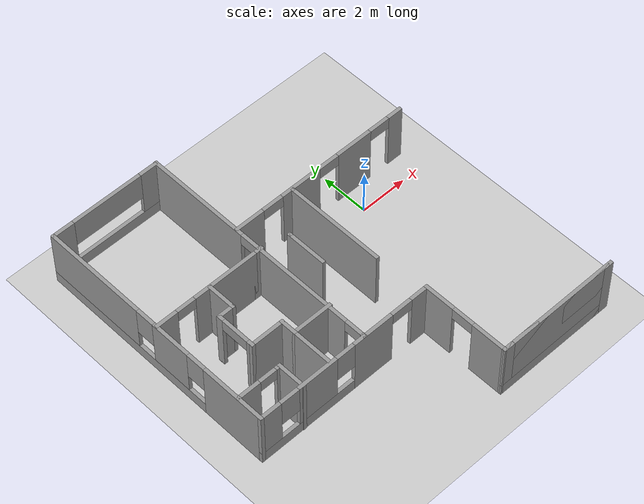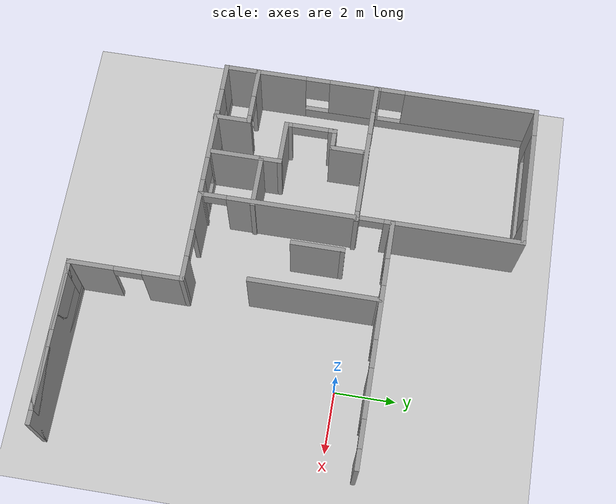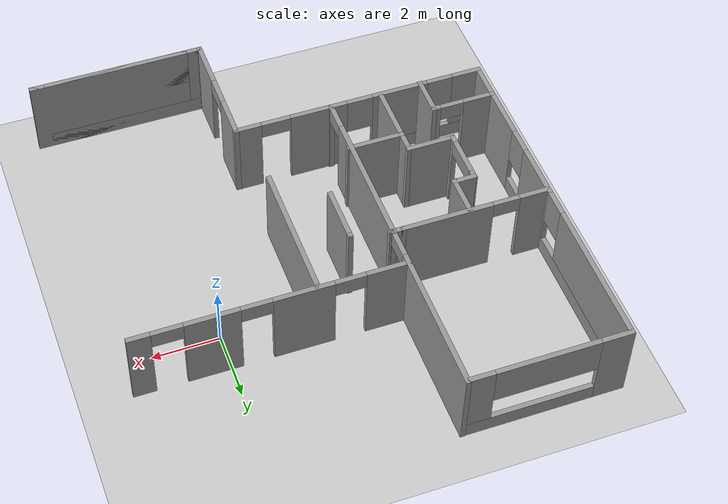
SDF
<sdf version="1.7">
 <world name="default">
  <model name="ground_plane">
   <static>1</static>
   <link name="link">
    <collision name="collision">
     <geometry><plane><normal>0 0 1</normal><size>100 100</size></plane></geometry>
     <surface>
      <contact><collide_bitmask>65535</collide_bitmask></contact>
      <friction><ode><mu>100</mu><mu2>50</mu2></ode></friction>
     </surface>
    </collision>
    <visual name="visual">
     <cast_shadows>0</cast_shadows>
     <geometry><plane><normal>0 0 1</normal><size>100 100</size></plane></geometry>
     <material>
      <script><uri>file://media/materials/scripts/gazebo.material</uri><name>Gazebo/Grey</name></script>
     </material>
    </visual>
   </link>
  </model>
  <model name="Floorplan5">
   <pose>0.817084 -1.82012 0 0 -0 0</pose>
   <link name="Wall_0">
    <collision name="Wall_0_Collision">
     <geometry><box><size>5.33606 0.15 2.5</size></box></geometry>
     <pose>0 0 1.25 0 -0 0</pose>
    </collision>
    <visual name="Wall_0_Visual">
     <pose>0 0 1.25 0 -0 0</pose>
     <geometry><box><size>5.33606 0.15 2.5</size></box></geometry>
     <material>
      <script><uri>file://media/materials/scripts/gazebo.material</uri><name>Gazebo/Grey</name></script>
      <ambient>1 1 1 1</ambient>
     </material>
     <meta><layer>0</layer></meta>
    </visual>
    <pose>-0.430466 -6.98064 0 0 -0 3.13979</pose>
   </link>
   <link name="Wall_1">
    <pose>-3.02349 -5.17596 0 0 -0 1.5708</pose>
    <visual name="Wall_1_Visual_0">
     <pose>-1.12311 0 1.25 0 -0 0</pose>
     <geometry><box><size>1.50379 0.15 2.5</size></box></geometry>
     <material>
      <script><uri>file://media/materials/scripts/gazebo.material</uri><name>Gazebo/Grey</name></script>
      <ambient>1 1 1 1</ambient>
     </material>
     <meta><layer>0</layer></meta>
    </visual>
    <collision name="Wall_1_Collision_0">
     <geometry><box><size>1.50379 0.15 2.5</size></box></geometry>
     <pose>-1.12311 0 1.25 0 -0 0</pose>
    </collision>
    <visual name="Wall_1_Visual_1">
     <pose>1.20189 0 1.25 0 -0 0</pose>
     <geometry><box><size>1.34621 0.15 2.5</size></box></geometry>
     <material>
      <script><uri>file://media/materials/scripts/gazebo.material</uri><name>Gazebo/Grey</name></script>
      <ambient>1 1 1 1</ambient>
     </material>
     <meta><layer>0</layer></meta>
    </visual>
    <collision name="Wall_1_Collision_1">
     <geometry><box><size>1.34621 0.15 2.5</size></box></geometry>
     <pose>1.20189 0 1.25 0 -0 0</pose>
    </collision>
    <visual name="Wall_1_Visual_2">
     <pose>0.078787 0 2.25 0 -0 0</pose>
     <geometry><box><size>0.9 0.15 0.5</size></box></geometry>
     <material>
      <script><uri>file://media/materials/scripts/gazebo.material</uri><name>Gazebo/Grey</name></script>
      <ambient>1 1 1 1</ambient>
     </material>
     <meta><layer>0</layer></meta>
    </visual>
    <collision name="Wall_1_Collision_2">
     <geometry><box><size>0.9 0.15 0.5</size></box></geometry>
     <pose>0.078787 0 2.25 0 -0 0</pose>
    </collision>
   </link>
   <link name="Wall_10">
    <pose>-8.32349 6.97404 0 0 -0 0</pose>
    <visual name="Wall_10_Visual_0">
     <pose>-1.90261 0 1.25 0 -0 0</pose>
     <geometry><box><size>0.944783 0.15 2.5</size></box></geometry>
     <material>
      <script><uri>file://media/materials/scripts/gazebo.material</uri><name>Gazebo/Grey</name></script>
      <ambient>1 1 1 1</ambient>
     </material>
     <meta><layer>0</layer></meta>
    </visual>
    <collision name="Wall_10_Collision_0">
     <geometry><box><size>0.944783 0.15 2.5</size></box></geometry>
     <pose>-1.90261 0 1.25 0 -0 0</pose>
    </collision>
    <visual name="Wall_10_Visual_1">
     <pose>0.472392 0 0.25 0 -0 0</pose>
     <geometry><box><size>3.80522 0.15 0.5</size></box></geometry>
     <material>
      <script><uri>file://media/materials/scripts/gazebo.material</uri><name>Gazebo/Grey</name></script>
      <ambient>1 1 1 1</ambient>
     </material>
     <meta><layer>0</layer></meta>
    </visual>
    <collision name="Wall_10_Collision_1">
     <geometry><box><size>3.80522 0.15 0.5</size></box></geometry>
     <pose>0.472392 0 0.25 0 -0 0</pose>
    </collision>
    <visual name="Wall_10_Visual_2">
     <pose>1.98492 0 1.5 0 -0 0</pose>
     <geometry><box><size>0.78016 0.15 2</size></box></geometry>
     <material>
      <script><uri>file://media/materials/scripts/gazebo.material</uri><name>Gazebo/Grey</name></script>
      <ambient>1 1 1 1</ambient>
     </material>
     <meta><layer>0</layer></meta>
    </visual>
    <collision name="Wall_10_Collision_2">
     <geometry><box><size>0.78016 0.15 2</size></box></geometry>
     <pose>1.98492 0 1.5 0 -0 0</pose>
    </collision>
    <visual name="Wall_10_Visual_3">
     <pose>0.082312 0 1.9 0 -0 0</pose>
     <geometry><box><size>3.02506 0.15 1.2</size></box></geometry>
     <material>
      <script><uri>file://media/materials/scripts/gazebo.material</uri><name>Gazebo/Grey</name></script>
      <ambient>1 1 1 1</ambient>
     </material>
     <meta><layer>0</layer></meta>
    </visual>
    <collision name="Wall_10_Collision_3">
     <geometry><box><size>3.02506 0.15 1.2</size></box></geometry>
     <pose>0.082312 0 1.9 0 -0 0</pose>
    </collision>
   </link>
   <link name="Wall_12">
    <pose>-2.00151 2.83994 0 0 -0 0</pose>
    <visual name="Wall_12_Visual_0">
     <pose>-3.36386 0 1.25 0 -0 0</pose>
     <geometry><box><size>1.27227 0.15 2.5</size></box></geometry>
     <material>
      <script><uri>file://media/materials/scripts/gazebo.material</uri><name>Gazebo/Grey</name></script>
      <ambient>1 1 1 1</ambient>
     </material>
     <meta><layer>0</layer></meta>
    </visual>
    <collision name="Wall_12_Collision_0">
     <geometry><box><size>1.27227 0.15 2.5</size></box></geometry>
     <pose>-3.36386 0 1.25 0 -0 0</pose>
    </collision>
    <visual name="Wall_12_Visual_1">
     <pose>-0.942694 0 1.25 0 -0 0</pose>
     <geometry><box><size>1.77007 0.15 2.5</size></box></geometry>
     <material>
      <script><uri>file://media/materials/scripts/gazebo.material</uri><name>Gazebo/Grey</name></script>
      <ambient>1 1 1 1</ambient>
     </material>
     <meta><layer>0</layer></meta>
    </visual>
    <collision name="Wall_12_Collision_1">
     <geometry><box><size>1.77007 0.15 2.5</size></box></geometry>
     <pose>-0.942694 0 1.25 0 -0 0</pose>
    </collision>
    <visual name="Wall_12_Visual_2">
     <pose>1.63635 0 1.25 0 -0 0</pose>
     <geometry><box><size>1.58802 0.15 2.5</size></box></geometry>
     <material>
      <script><uri>file://media/materials/scripts/gazebo.material</uri><name>Gazebo/Grey</name></script>
      <ambient>1 1 1 1</ambient>
     </material>
     <meta><layer>0</layer></meta>
    </visual>
    <collision name="Wall_12_Collision_2">
     <geometry><box><size>1.58802 0.15 2.5</size></box></geometry>
     <pose>1.63635 0 1.25 0 -0 0</pose>
    </collision>
    <visual name="Wall_12_Visual_3">
     <pose>3.66518 0 1.25 0 -0 0</pose>
     <geometry><box><size>0.669642 0.15 2.5</size></box></geometry>
     <material>
      <script><uri>file://media/materials/scripts/gazebo.material</uri><name>Gazebo/Grey</name></script>
      <ambient>1 1 1 1</ambient>
     </material>
     <meta><layer>0</layer></meta>
    </visual>
    <collision name="Wall_12_Collision_3">
     <geometry><box><size>0.669642 0.15 2.5</size></box></geometry>
     <pose>3.66518 0 1.25 0 -0 0</pose>
    </collision>
    <visual name="Wall_12_Visual_4">
     <pose>-2.27773 0 2.25 0 -0 0</pose>
     <geometry><box><size>0.9 0.15 0.5</size></box></geometry>
     <material>
      <script><uri>file://media/materials/scripts/gazebo.material</uri><name>Gazebo/Grey</name></script>
      <ambient>1 1 1 1</ambient>
     </material>
     <meta><layer>0</layer></meta>
    </visual>
    <collision name="Wall_12_Collision_4">
     <geometry><box><size>0.9 0.15 0.5</size></box></geometry>
     <pose>-2.27773 0 2.25 0 -0 0</pose>
    </collision>
    <visual name="Wall_12_Visual_5">
     <pose>0.39234 0 2.25 0 -0 0</pose>
     <geometry><box><size>0.9 0.15 0.5</size></box></geometry>
     <material>
      <script><uri>file://media/materials/scripts/gazebo.material</uri><name>Gazebo/Grey</name></script>
      <ambient>1 1 1 1</ambient>
     </material>
     <meta><layer>0</layer></meta>
    </visual>
    <collision name="Wall_12_Collision_5">
     <geometry><box><size>0.9 0.15 0.5</size></box></geometry>
     <pose>0.39234 0 2.25 0 -0 0</pose>
    </collision>
    <visual name="Wall_12_Visual_6">
     <pose>2.88036 0 2.25 0 -0 0</pose>
     <geometry><box><size>0.9 0.15 0.5</size></box></geometry>
     <material>
      <script><uri>file://media/materials/scripts/gazebo.material</uri><name>Gazebo/Grey</name></script>
      <ambient>1 1 1 1</ambient>
     </material>
     <meta><layer>0</layer></meta>
    </visual>
    <collision name="Wall_12_Collision_6">
     <geometry><box><size>0.9 0.15 0.5</size></box></geometry>
     <pose>2.88036 0 2.25 0 -0 0</pose>
    </collision>
   </link>
   <link name="Wall_43">
    <pose>-0.430466 -6.98064 0 0 -0 3.13979</pose>
    <visual name="Wall_43_Visual_0">
     <pose>-2.44294 0 1.25 0 -0 0</pose>
     <geometry><box><size>0.450176 0.15 2.5</size></box></geometry>
     <material>
      <script><uri>file://media/materials/scripts/gazebo.material</uri><name>Gazebo/Grey</name></script>
      <ambient>1 1 1 1</ambient>
     </material>
     <meta><layer>0</layer></meta>
    </visual>
    <collision name="Wall_43_Collision_0">
     <geometry><box><size>0.450176 0.15 2.5</size></box></geometry>
     <pose>-2.44294 0 1.25 0 -0 0</pose>
    </collision>
    <visual name="Wall_43_Visual_1">
     <pose>0.225088 0 0.25 0 -0 0</pose>
     <geometry><box><size>4.88588 0.15 0.5</size></box></geometry>
     <material>
      <script><uri>file://media/materials/scripts/gazebo.material</uri><name>Gazebo/Grey</name></script>
      <ambient>1 1 1 1</ambient>
     </material>
     <meta><layer>0</layer></meta>
    </visual>
    <collision name="Wall_43_Collision_1">
     <geometry><box><size>4.88588 0.15 0.5</size></box></geometry>
     <pose>0.225088 0 0.25 0 -0 0</pose>
    </collision>
    <visual name="Wall_43_Visual_2">
     <pose>0.053397 0 1.5 0 -0 0</pose>
     <geometry><box><size>0.555406 0.15 2</size></box></geometry>
     <material>
      <script><uri>file://media/materials/scripts/gazebo.material</uri><name>Gazebo/Grey</name></script>
      <ambient>1 1 1 1</ambient>
     </material>
     <meta><layer>0</layer></meta>
    </visual>
    <collision name="Wall_43_Collision_2">
     <geometry><box><size>0.555406 0.15 2</size></box></geometry>
     <pose>0.053397 0 1.5 0 -0 0</pose>
    </collision>
    <visual name="Wall_43_Visual_3">
     <pose>2.42547 0 1.5 0 -0 0</pose>
     <geometry><box><size>0.485123 0.15 2</size></box></geometry>
     <material>
      <script><uri>file://media/materials/scripts/gazebo.material</uri><name>Gazebo/Grey</name></script>
      <ambient>1 1 1 1</ambient>
     </material>
     <meta><layer>0</layer></meta>
    </visual>
    <collision name="Wall_43_Collision_3">
     <geometry><box><size>0.485123 0.15 2</size></box></geometry>
     <pose>2.42547 0 1.5 0 -0 0</pose>
    </collision>
    <visual name="Wall_43_Visual_4">
     <pose>-1.22108 0 1.9 0 -0 0</pose>
     <geometry><box><size>1.99355 0.15 1.2</size></box></geometry>
     <material>
      <script><uri>file://media/materials/scripts/gazebo.material</uri><name>Gazebo/Grey</name></script>
      <ambient>1 1 1 1</ambient>
     </material>
     <meta><layer>0</layer></meta>
    </visual>
    <collision name="Wall_43_Collision_4">
     <geometry><box><size>1.99355 0.15 1.2</size></box></geometry>
     <pose>-1.22108 0 1.9 0 -0 0</pose>
    </collision>
    <visual name="Wall_43_Visual_5">
     <pose>1.257 0 1.9 0 -0 0</pose>
     <geometry><box><size>1.85181 0.15 1.2</size></box></geometry>
     <material>
      <script><uri>file://media/materials/scripts/gazebo.material</uri><name>Gazebo/Grey</name></script>
      <ambient>1 1 1 1</ambient>
     </material>
     <meta><layer>0</layer></meta>
    </visual>
    <collision name="Wall_43_Collision_5">
     <geometry><box><size>1.85181 0.15 1.2</size></box></geometry>
     <pose>1.257 0 1.9 0 -0 0</pose>
    </collision>
   </link>
   <link name="Wall_44">
    <collision name="Wall_44_Collision">
     <geometry><box><size>0.16 0.15 2.5</size></box></geometry>
     <pose>0 0 1.25 0 -0 0</pose>
    </collision>
    <visual name="Wall_44_Visual">
     <pose>0 0 1.25 0 -0 0</pose>
     <geometry><box><size>0.16 0.15 2.5</size></box></geometry>
     <material>
      <script><uri>file://media/materials/scripts/gazebo.material</uri><name>Gazebo/Grey</name></script>
      <ambient>1 1 1 1</ambient>
     </material>
     <meta><layer>0</layer></meta>
    </visual>
    <pose>-3.01849 -6.97596 0 0 -0 0</pose>
   </link>
   <link name="Wall_49">
    <collision name="Wall_49_Collision">
     <geometry><box><size>4.25 0.15 2.5</size></box></geometry>
     <pose>0 0 1.25 0 -0 0</pose>
    </collision>
    <visual name="Wall_49_Visual">
     <pose>0 0 1.25 0 -0 0</pose>
     <geometry><box><size>4.25 0.15 2.5</size></box></geometry>
     <material>
      <script><uri>file://media/materials/scripts/gazebo.material</uri><name>Gazebo/Grey</name></script>
      <ambient>1 1 1 1</ambient>
     </material>
     <meta><layer>0</layer></meta>
    </visual>
    <pose>-3.34876 0.736864 0 0 -0 1.5708</pose>
   </link>
   <link name="Wall_5">
    <pose>-5.95393 1.81045 0 0 -0 -1.5708</pose>
    <visual name="Wall_5_Visual_0">
     <pose>-2.99965 0 1.25 0 -0 0</pose>
     <geometry><box><size>4.50069 0.15 2.5</size></box></geometry>
     <material>
      <script><uri>file://media/materials/scripts/gazebo.material</uri><name>Gazebo/Grey</name></script>
      <ambient>1 1 1 1</ambient>
     </material>
     <meta><layer>0</layer></meta>
    </visual>
    <collision name="Wall_5_Collision_0">
     <geometry><box><size>4.50069 0.15 2.5</size></box></geometry>
     <pose>-2.99965 0 1.25 0 -0 0</pose>
    </collision>
    <visual name="Wall_5_Visual_1">
     <pose>2.1786 0 1.25 0 -0 0</pose>
     <geometry><box><size>4.29854 0.15 2.5</size></box></geometry>
     <material>
      <script><uri>file://media/materials/scripts/gazebo.material</uri><name>Gazebo/Grey</name></script>
      <ambient>1 1 1 1</ambient>
     </material>
     <meta><layer>0</layer></meta>
    </visual>
    <collision name="Wall_5_Collision_1">
     <geometry><box><size>4.29854 0.15 2.5</size></box></geometry>
     <pose>2.1786 0 1.25 0 -0 0</pose>
    </collision>
    <visual name="Wall_5_Visual_2">
     <pose>5.15802 0 1.25 0 -0 0</pose>
     <geometry><box><size>0.183955 0.15 2.5</size></box></geometry>
     <material>
      <script><uri>file://media/materials/scripts/gazebo.material</uri><name>Gazebo/Grey</name></script>
      <ambient>1 1 1 1</ambient>
     </material>
     <meta><layer>0</layer></meta>
    </visual>
    <collision name="Wall_5_Collision_2">
     <geometry><box><size>0.183955 0.15 2.5</size></box></geometry>
     <pose>5.15802 0 1.25 0 -0 0</pose>
    </collision>
    <visual name="Wall_5_Visual_3">
     <pose>-0.359991 0 2.25 0 -0 0</pose>
     <geometry><box><size>0.778633 0.15 0.5</size></box></geometry>
     <material>
      <script><uri>file://media/materials/scripts/gazebo.material</uri><name>Gazebo/Grey</name></script>
      <ambient>1 1 1 1</ambient>
     </material>
     <meta><layer>0</layer></meta>
    </visual>
    <collision name="Wall_5_Collision_3">
     <geometry><box><size>0.778633 0.15 0.5</size></box></geometry>
     <pose>-0.359991 0 2.25 0 -0 0</pose>
    </collision>
    <visual name="Wall_5_Visual_4">
     <pose>4.69696 0 2.25 0 -0 0</pose>
     <geometry><box><size>0.738178 0.15 0.5</size></box></geometry>
     <material>
      <script><uri>file://media/materials/scripts/gazebo.material</uri><name>Gazebo/Grey</name></script>
      <ambient>1 1 1 1</ambient>
     </material>
     <meta><layer>0</layer></meta>
    </visual>
    <collision name="Wall_5_Collision_4">
     <geometry><box><size>0.738178 0.15 0.5</size></box></geometry>
     <pose>4.69696 0 2.25 0 -0 0</pose>
    </collision>
   </link>
   <link name="Wall_50">
    <collision name="Wall_50_Collision">
     <geometry><box><size>0.15 0.15 2.5</size></box></geometry>
     <pose>0 0 1.25 0 -0 0</pose>
    </collision>
    <visual name="Wall_50_Visual">
     <pose>0 0 1.25 0 -0 0</pose>
     <geometry><box><size>0.15 0.15 2.5</size></box></geometry>
     <material>
      <script><uri>file://media/materials/scripts/gazebo.material</uri><name>Gazebo/Grey</name></script>
      <ambient>1 1 1 1</ambient>
     </material>
     <meta><layer>0</layer></meta>
    </visual>
    <pose>-3.34876 2.78686 0 0 -0 0</pose>
   </link>
   <link name="Wall_52">
    <pose>-8.41531 1.68058 0 0 -0 0</pose>
    <visual name="Wall_52_Visual_0">
     <pose>-1.78515 0 1.25 0 -0 0</pose>
     <geometry><box><size>0.929692 0.15 2.5</size></box></geometry>
     <material>
      <script><uri>file://media/materials/scripts/gazebo.material</uri><name>Gazebo/Grey</name></script>
      <ambient>1 1 1 1</ambient>
     </material>
     <meta><layer>0</layer></meta>
    </visual>
    <collision name="Wall_52_Collision_0">
     <geometry><box><size>0.929692 0.15 2.5</size></box></geometry>
     <pose>-1.78515 0 1.25 0 -0 0</pose>
    </collision>
    <visual name="Wall_52_Visual_1">
     <pose>0.864277 0 1.25 0 -0 0</pose>
     <geometry><box><size>2.77145 0.15 2.5</size></box></geometry>
     <material>
      <script><uri>file://media/materials/scripts/gazebo.material</uri><name>Gazebo/Grey</name></script>
      <ambient>1 1 1 1</ambient>
     </material>
     <meta><layer>0</layer></meta>
    </visual>
    <collision name="Wall_52_Collision_1">
     <geometry><box><size>2.77145 0.15 2.5</size></box></geometry>
     <pose>0.864277 0 1.25 0 -0 0</pose>
    </collision>
    <visual name="Wall_52_Visual_2">
     <pose>-0.920877 0 2.25 0 -0 0</pose>
     <geometry><box><size>0.798861 0.15 0.5</size></box></geometry>
     <material>
      <script><uri>file://media/materials/scripts/gazebo.material</uri><name>Gazebo/Grey</name></script>
      <ambient>1 1 1 1</ambient>
     </material>
     <meta><layer>0</layer></meta>
    </visual>
    <collision name="Wall_52_Collision_2">
     <geometry><box><size>0.798861 0.15 0.5</size></box></geometry>
     <pose>-0.920877 0 2.25 0 -0 0</pose>
    </collision>
   </link>
   <link name="Wall_53">
    <collision name="Wall_53_Collision">
     <geometry><box><size>0.5 0.15 2.5</size></box></geometry>
     <pose>0 0 1.25 0 -0 0</pose>
    </collision>
    <visual name="Wall_53_Visual">
     <pose>0 0 1.25 0 -0 0</pose>
     <geometry><box><size>0.5 0.15 2.5</size></box></geometry>
     <material>
      <script><uri>file://media/materials/scripts/gazebo.material</uri><name>Gazebo/Grey</name></script>
      <ambient>1 1 1 1</ambient>
     </material>
     <meta><layer>0</layer></meta>
    </visual>
    <pose>-6.06531 1.68058 0 0 -0 0</pose>
   </link>
   <link name="Wall_54">
    <collision name="Wall_54_Collision">
     <geometry><box><size>0.15 0.15 2.5</size></box></geometry>
     <pose>0 0 1.25 0 -0 0</pose>
    </collision>
    <visual name="Wall_54_Visual">
     <pose>0 0 1.25 0 -0 0</pose>
     <geometry><box><size>0.15 0.15 2.5</size></box></geometry>
     <material>
      <script><uri>file://media/materials/scripts/gazebo.material</uri><name>Gazebo/Grey</name></script>
      <ambient>1 1 1 1</ambient>
     </material>
     <meta><layer>0</layer></meta>
    </visual>
    <pose>-5.89031 1.68058 0 0 -0 0</pose>
   </link>
   <link name="Wall_56">
    <collision name="Wall_56_Collision">
     <geometry><box><size>1.75 0.15 2.5</size></box></geometry>
     <pose>0 0 1.25 0 -0 0</pose>
    </collision>
    <visual name="Wall_56_Visual">
     <pose>0 0 1.25 0 -0 0</pose>
     <geometry><box><size>1.75 0.15 2.5</size></box></geometry>
     <material>
      <script><uri>file://media/materials/scripts/gazebo.material</uri><name>Gazebo/Grey</name></script>
      <ambient>1 1 1 1</ambient>
     </material>
     <meta><layer>0</layer></meta>
    </visual>
    <pose>-6.69746 -1.65701 0 0 -0 3.14159</pose>
   </link>
   <link name="Wall_57">
    <collision name="Wall_57_Collision">
     <geometry><box><size>1.75 0.15 2.5</size></box></geometry>
     <pose>0 0 1.25 0 -0 0</pose>
    </collision>
    <visual name="Wall_57_Visual">
     <pose>0 0 1.25 0 -0 0</pose>
     <geometry><box><size>1.75 0.15 2.5</size></box></geometry>
     <material>
      <script><uri>file://media/materials/scripts/gazebo.material</uri><name>Gazebo/Grey</name></script>
      <ambient>1 1 1 1</ambient>
     </material>
     <meta><layer>0</layer></meta>
    </visual>
    <pose>-7.49746 -2.45701 0 0 -0 -1.5708</pose>
   </link>
   <link name="Wall_59">
    <collision name="Wall_59_Collision">
     <geometry><box><size>0.75 0.15 2.5</size></box></geometry>
     <pose>0 0 1.25 0 -0 0</pose>
    </collision>
    <visual name="Wall_59_Visual">
     <pose>0 0 1.25 0 -0 0</pose>
     <geometry><box><size>0.75 0.15 2.5</size></box></geometry>
     <material>
      <script><uri>file://media/materials/scripts/gazebo.material</uri><name>Gazebo/Grey</name></script>
      <ambient>1 1 1 1</ambient>
     </material>
     <meta><layer>0</layer></meta>
    </visual>
    <pose>-7.49746 -1.35701 0 0 -0 1.5708</pose>
   </link>
   <link name="Wall_6">
    <collision name="Wall_6_Collision">
     <geometry><box><size>0.15 0.15 2.5</size></box></geometry>
     <pose>0 0 1.25 0 -0 0</pose>
    </collision>
    <visual name="Wall_6_Visual">
     <pose>0 0 1.25 0 -0 0</pose>
     <geometry><box><size>0.15 0.15 2.5</size></box></geometry>
     <material>
      <script><uri>file://media/materials/scripts/gazebo.material</uri><name>Gazebo/Grey</name></script>
      <ambient>1 1 1 1</ambient>
     </material>
     <meta><layer>0</layer></meta>
    </visual>
    <pose>-5.95393 -3.37335 0 0 -0 0</pose>
   </link>
   <link name="Wall_60">
    <collision name="Wall_60_Collision">
     <geometry><box><size>1.5 0.15 2.5</size></box></geometry>
     <pose>0 0 1.25 0 -0 0</pose>
    </collision>
    <visual name="Wall_60_Visual">
     <pose>0 0 1.25 0 -0 0</pose>
     <geometry><box><size>1.5 0.15 2.5</size></box></geometry>
     <material>
      <script><uri>file://media/materials/scripts/gazebo.material</uri><name>Gazebo/Grey</name></script>
      <ambient>1 1 1 1</ambient>
     </material>
     <meta><layer>0</layer></meta>
    </visual>
    <pose>-8.17246 -1.05701 0 0 -0 3.14159</pose>
   </link>
   <link name="Wall_61">
    <pose>-8.84746 -0.257008 0 0 -0 1.5708</pose>
    <visual name="Wall_61_Visual_0">
     <pose>-0.735439 0 1.25 0 -0 0</pose>
     <geometry><box><size>0.279123 0.15 2.5</size></box></geometry>
     <material>
      <script><uri>file://media/materials/scripts/gazebo.material</uri><name>Gazebo/Grey</name></script>
      <ambient>1 1 1 1</ambient>
     </material>
     <meta><layer>0</layer></meta>
    </visual>
    <collision name="Wall_61_Collision_0">
     <geometry><box><size>0.279123 0.15 2.5</size></box></geometry>
     <pose>-0.735439 0 1.25 0 -0 0</pose>
    </collision>
    <visual name="Wall_61_Visual_1">
     <pose>0.731156 0 1.25 0 -0 0</pose>
     <geometry><box><size>0.287688 0.15 2.5</size></box></geometry>
     <material>
      <script><uri>file://media/materials/scripts/gazebo.material</uri><name>Gazebo/Grey</name></script>
      <ambient>1 1 1 1</ambient>
     </material>
     <meta><layer>0</layer></meta>
    </visual>
    <collision name="Wall_61_Collision_1">
     <geometry><box><size>0.287688 0.15 2.5</size></box></geometry>
     <pose>0.731156 0 1.25 0 -0 0</pose>
    </collision>
    <visual name="Wall_61_Visual_2">
     <pose>-0.004283 0 2.25 0 -0 0</pose>
     <geometry><box><size>1.18319 0.15 0.5</size></box></geometry>
     <material>
      <script><uri>file://media/materials/scripts/gazebo.material</uri><name>Gazebo/Grey</name></script>
      <ambient>1 1 1 1</ambient>
     </material>
     <meta><layer>0</layer></meta>
    </visual>
    <collision name="Wall_61_Collision_2">
     <geometry><box><size>1.18319 0.15 0.5</size></box></geometry>
     <pose>-0.004283 0 2.25 0 -0 0</pose>
    </collision>
   </link>
   <link name="Wall_62">
    <collision name="Wall_62_Collision">
     <geometry><box><size>0.75 0.15 2.5</size></box></geometry>
     <pose>0 0 1.25 0 -0 0</pose>
    </collision>
    <visual name="Wall_62_Visual">
     <pose>0 0 1.25 0 -0 0</pose>
     <geometry><box><size>0.75 0.15 2.5</size></box></geometry>
     <material>
      <script><uri>file://media/materials/scripts/gazebo.material</uri><name>Gazebo/Grey</name></script>
      <ambient>1 1 1 1</ambient>
     </material>
     <meta><layer>0</layer></meta>
    </visual>
    <pose>-8.54746 0.542992 0 0 -0 0</pose>
   </link>
   <link name="Wall_63">
    <collision name="Wall_63_Collision">
     <geometry><box><size>1.25 0.15 2.5</size></box></geometry>
     <pose>0 0 1.25 0 -0 0</pose>
    </collision>
    <visual name="Wall_63_Visual">
     <pose>0 0 1.25 0 -0 0</pose>
     <geometry><box><size>1.25 0.15 2.5</size></box></geometry>
     <material>
      <script><uri>file://media/materials/scripts/gazebo.material</uri><name>Gazebo/Grey</name></script>
      <ambient>1 1 1 1</ambient>
     </material>
     <meta><layer>0</layer></meta>
    </visual>
    <pose>-8.24746 1.09299 0 0 -0 1.5708</pose>
   </link>
   <link name="Wall_64">
    <collision name="Wall_64_Collision">
     <geometry><box><size>0.15 0.15 2.5</size></box></geometry>
     <pose>0 0 1.25 0 -0 0</pose>
    </collision>
    <visual name="Wall_64_Visual">
     <pose>0 0 1.25 0 -0 0</pose>
     <geometry><box><size>0.15 0.15 2.5</size></box></geometry>
     <material>
      <script><uri>file://media/materials/scripts/gazebo.material</uri><name>Gazebo/Grey</name></script>
      <ambient>1 1 1 1</ambient>
     </material>
     <meta><layer>0</layer></meta>
    </visual>
    <pose>-8.24746 1.64299 0 0 -0 0</pose>
   </link>
   <link name="Wall_66">
    <collision name="Wall_66_Collision">
     <geometry><box><size>1.25 0.15 2.5</size></box></geometry>
     <pose>0 0 1.25 0 -0 0</pose>
    </collision>
    <visual name="Wall_66_Visual">
     <pose>0 0 1.25 0 -0 0</pose>
     <geometry><box><size>1.25 0.15 2.5</size></box></geometry>
     <material>
      <script><uri>file://media/materials/scripts/gazebo.material</uri><name>Gazebo/Grey</name></script>
      <ambient>1 1 1 1</ambient>
     </material>
     <meta><layer>0</layer></meta>
    </visual>
    <pose>-8.7698 -2.8466 0 0 -0 1.5708</pose>
   </link>
   <link name="Wall_67">
    <pose>-9.69481 -2.2966 0 0 -0 3.14159</pose>
    <visual name="Wall_67_Visual_0">
     <pose>-0.863855 0 1.25 0 -0 0</pose>
     <geometry><box><size>0.27229 0.15 2.5</size></box></geometry>
     <material>
      <script><uri>file://media/materials/scripts/gazebo.material</uri><name>Gazebo/Grey</name></script>
      <ambient>1 1 1 1</ambient>
     </material>
     <meta><layer>0</layer></meta>
    </visual>
    <collision name="Wall_67_Collision_0">
     <geometry><box><size>0.27229 0.15 2.5</size></box></geometry>
     <pose>-0.863855 0 1.25 0 -0 0</pose>
    </collision>
    <visual name="Wall_67_Visual_1">
     <pose>0.49512 0 1.25 0 -0 0</pose>
     <geometry><box><size>1.00976 0.15 2.5</size></box></geometry>
     <material>
      <script><uri>file://media/materials/scripts/gazebo.material</uri><name>Gazebo/Grey</name></script>
      <ambient>1 1 1 1</ambient>
     </material>
     <meta><layer>0</layer></meta>
    </visual>
    <collision name="Wall_67_Collision_1">
     <geometry><box><size>1.00976 0.15 2.5</size></box></geometry>
     <pose>0.49512 0 1.25 0 -0 0</pose>
    </collision>
    <visual name="Wall_67_Visual_2">
     <pose>-0.368735 0 2.25 0 -0 0</pose>
     <geometry><box><size>0.71795 0.15 0.5</size></box></geometry>
     <material>
      <script><uri>file://media/materials/scripts/gazebo.material</uri><name>Gazebo/Grey</name></script>
      <ambient>1 1 1 1</ambient>
     </material>
     <meta><layer>0</layer></meta>
    </visual>
    <collision name="Wall_67_Collision_2">
     <geometry><box><size>0.71795 0.15 0.5</size></box></geometry>
     <pose>-0.368735 0 2.25 0 -0 0</pose>
    </collision>
   </link>
   <link name="Wall_68">
    <collision name="Wall_68_Collision">
     <geometry><box><size>0.16 0.15 2.5</size></box></geometry>
     <pose>0 0 1.25 0 -0 0</pose>
    </collision>
    <visual name="Wall_68_Visual">
     <pose>0 0 1.25 0 -0 0</pose>
     <geometry><box><size>0.16 0.15 2.5</size></box></geometry>
     <material>
      <script><uri>file://media/materials/scripts/gazebo.material</uri><name>Gazebo/Grey</name></script>
      <ambient>1 1 1 1</ambient>
     </material>
     <meta><layer>0</layer></meta>
    </visual>
    <pose>-10.6148 -2.2966 0 0 -0 0</pose>
   </link>
   <link name="Wall_70">
    <collision name="Wall_70_Collision">
     <geometry><box><size>1.75 0.15 2.5</size></box></geometry>
     <pose>0 0 1.25 0 -0 0</pose>
    </collision>
    <visual name="Wall_70_Visual">
     <pose>0 0 1.25 0 -0 0</pose>
     <geometry><box><size>1.75 0.15 2.5</size></box></geometry>
     <material>
      <script><uri>file://media/materials/scripts/gazebo.material</uri><name>Gazebo/Grey</name></script>
      <ambient>1 1 1 1</ambient>
     </material>
     <meta><layer>0</layer></meta>
    </visual>
    <pose>-4.78493 0.61962 0 0 -0 1.5708</pose>
   </link>
   <link name="Wall_71">
    <collision name="Wall_71_Collision">
     <geometry><box><size>0.15 0.15 2.5</size></box></geometry>
     <pose>0 0 1.25 0 -0 0</pose>
    </collision>
    <visual name="Wall_71_Visual">
     <pose>0 0 1.25 0 -0 0</pose>
     <geometry><box><size>0.15 0.15 2.5</size></box></geometry>
     <material>
      <script><uri>file://media/materials/scripts/gazebo.material</uri><name>Gazebo/Grey</name></script>
      <ambient>1 1 1 1</ambient>
     </material>
     <meta><layer>0</layer></meta>
    </visual>
    <pose>-4.78493 1.41962 0 0 -0 0</pose>
   </link>
   <link name="Wall_8">
    <pose>-6.82349 -3.37596 0 0 -0 3.14159</pose>
    <visual name="Wall_8_Visual_0">
     <pose>-3.45485 0 1.25 0 -0 0</pose>
     <geometry><box><size>0.84029 0.15 2.5</size></box></geometry>
     <material>
      <script><uri>file://media/materials/scripts/gazebo.material</uri><name>Gazebo/Grey</name></script>
      <ambient>1 1 1 1</ambient>
     </material>
     <meta><layer>0</layer></meta>
    </visual>
    <collision name="Wall_8_Collision_0">
     <geometry><box><size>0.84029 0.15 2.5</size></box></geometry>
     <pose>-3.45485 0 1.25 0 -0 0</pose>
    </collision>
    <visual name="Wall_8_Visual_1">
     <pose>-1.25637 0 1.25 0 -0 0</pose>
     <geometry><box><size>1.75668 0.15 2.5</size></box></geometry>
     <material>
      <script><uri>file://media/materials/scripts/gazebo.material</uri><name>Gazebo/Grey</name></script>
      <ambient>1 1 1 1</ambient>
     </material>
     <meta><layer>0</layer></meta>
    </visual>
    <collision name="Wall_8_Collision_1">
     <geometry><box><size>1.75668 0.15 2.5</size></box></geometry>
     <pose>-1.25637 0 1.25 0 -0 0</pose>
    </collision>
    <visual name="Wall_8_Visual_2">
     <pose>1.74849 0 0.25 0 -0 0</pose>
     <geometry><box><size>4.25303 0.15 0.5</size></box></geometry>
     <material>
      <script><uri>file://media/materials/scripts/gazebo.material</uri><name>Gazebo/Grey</name></script>
      <ambient>1 1 1 1</ambient>
     </material>
     <meta><layer>0</layer></meta>
    </visual>
    <collision name="Wall_8_Collision_2">
     <geometry><box><size>4.25303 0.15 0.5</size></box></geometry>
     <pose>1.74849 0 0.25 0 -0 0</pose>
    </collision>
    <visual name="Wall_8_Visual_3">
     <pose>1.28621 0 1.5 0 -0 0</pose>
     <geometry><box><size>1.72847 0.15 2</size></box></geometry>
     <material>
      <script><uri>file://media/materials/scripts/gazebo.material</uri><name>Gazebo/Grey</name></script>
      <ambient>1 1 1 1</ambient>
     </material>
     <meta><layer>0</layer></meta>
    </visual>
    <collision name="Wall_8_Collision_3">
     <geometry><box><size>1.72847 0.15 2</size></box></geometry>
     <pose>1.28621 0 1.5 0 -0 0</pose>
    </collision>
    <visual name="Wall_8_Visual_4">
     <pose>3.41272 0 1.5 0 -0 0</pose>
     <geometry><box><size>0.924556 0.15 2</size></box></geometry>
     <material>
      <script><uri>file://media/materials/scripts/gazebo.material</uri><name>Gazebo/Grey</name></script>
      <ambient>1 1 1 1</ambient>
     </material>
     <meta><layer>0</layer></meta>
    </visual>
    <collision name="Wall_8_Collision_4">
     <geometry><box><size>0.924556 0.15 2</size></box></geometry>
     <pose>3.41272 0 1.5 0 -0 0</pose>
    </collision>
    <visual name="Wall_8_Visual_5">
     <pose>0.021971 0 1.9 0 -0 0</pose>
     <geometry><box><size>0.8 0.15 1.2</size></box></geometry>
     <material>
      <script><uri>file://media/materials/scripts/gazebo.material</uri><name>Gazebo/Grey</name></script>
      <ambient>1 1 1 1</ambient>
     </material>
     <meta><layer>0</layer></meta>
    </visual>
    <collision name="Wall_8_Collision_5">
     <geometry><box><size>0.8 0.15 1.2</size></box></geometry>
     <pose>0.021971 0 1.9 0 -0 0</pose>
    </collision>
    <visual name="Wall_8_Visual_6">
     <pose>2.55044 0 1.9 0 -0 0</pose>
     <geometry><box><size>0.8 0.15 1.2</size></box></geometry>
     <material>
      <script><uri>file://media/materials/scripts/gazebo.material</uri><name>Gazebo/Grey</name></script>
      <ambient>1 1 1 1</ambient>
     </material>
     <meta><layer>0</layer></meta>
    </visual>
    <collision name="Wall_8_Collision_6">
     <geometry><box><size>0.8 0.15 1.2</size></box></geometry>
     <pose>2.55044 0 1.9 0 -0 0</pose>
    </collision>
    <visual name="Wall_8_Visual_7">
     <pose>-2.58471 0 2.25 0 -0 0</pose>
     <geometry><box><size>0.9 0.15 0.5</size></box></geometry>
     <material>
      <script><uri>file://media/materials/scripts/gazebo.material</uri><name>Gazebo/Grey</name></script>
      <ambient>1 1 1 1</ambient>
     </material>
     <meta><layer>0</layer></meta>
    </visual>
    <collision name="Wall_8_Collision_7">
     <geometry><box><size>0.9 0.15 0.5</size></box></geometry>
     <pose>-2.58471 0 2.25 0 -0 0</pose>
    </collision>
   </link>
   <link name="Wall_9">
    <pose>-10.6235 1.79904 0 0 -0 1.5708</pose>
    <visual name="Wall_9_Visual_0">
     <pose>-3.866 0 1.25 0 -0 0</pose>
     <geometry><box><size>2.768 0.15 2.5</size></box></geometry>
     <material>
      <script><uri>file://media/materials/scripts/gazebo.material</uri><name>Gazebo/Grey</name></script>
      <ambient>1 1 1 1</ambient>
     </material>
     <meta><layer>0</layer></meta>
    </visual>
    <collision name="Wall_9_Collision_0">
     <geometry><box><size>2.768 0.15 2.5</size></box></geometry>
     <pose>-3.866 0 1.25 0 -0 0</pose>
    </collision>
    <visual name="Wall_9_Visual_1">
     <pose>1.384 0 0.25 0 -0 0</pose>
     <geometry><box><size>7.732 0.15 0.5</size></box></geometry>
     <material>
      <script><uri>file://media/materials/scripts/gazebo.material</uri><name>Gazebo/Grey</name></script>
      <ambient>1 1 1 1</ambient>
     </material>
     <meta><layer>0</layer></meta>
    </visual>
    <collision name="Wall_9_Collision_1">
     <geometry><box><size>7.732 0.15 0.5</size></box></geometry>
     <pose>1.384 0 0.25 0 -0 0</pose>
    </collision>
    <visual name="Wall_9_Visual_2">
     <pose>-0.827877 0 1.5 0 -0 0</pose>
     <geometry><box><size>1.70825 0.15 2</size></box></geometry>
     <material>
      <script><uri>file://media/materials/scripts/gazebo.material</uri><name>Gazebo/Grey</name></script>
      <ambient>1 1 1 1</ambient>
     </material>
     <meta><layer>0</layer></meta>
    </visual>
    <collision name="Wall_9_Collision_2">
     <geometry><box><size>1.70825 0.15 2</size></box></geometry>
     <pose>-0.827877 0 1.5 0 -0 0</pose>
    </collision>
    <visual name="Wall_9_Visual_3">
     <pose>3.03812 0 1.5 0 -0 0</pose>
     <geometry><box><size>4.42375 0.15 2</size></box></geometry>
     <material>
      <script><uri>file://media/materials/scripts/gazebo.material</uri><name>Gazebo/Grey</name></script>
      <ambient>1 1 1 1</ambient>
     </material>
     <meta><layer>0</layer></meta>
    </visual>
    <collision name="Wall_9_Collision_3">
     <geometry><box><size>4.42375 0.15 2</size></box></geometry>
     <pose>3.03812 0 1.5 0 -0 0</pose>
    </collision>
    <visual name="Wall_9_Visual_4">
     <pose>-2.082 0 1.9 0 -0 0</pose>
     <geometry><box><size>0.8 0.15 1.2</size></box></geometry>
     <material>
      <script><uri>file://media/materials/scripts/gazebo.material</uri><name>Gazebo/Grey</name></script>
      <ambient>1 1 1 1</ambient>
     </material>
     <meta><layer>0</layer></meta>
    </visual>
    <collision name="Wall_9_Collision_4">
     <geometry><box><size>0.8 0.15 1.2</size></box></geometry>
     <pose>-2.082 0 1.9 0 -0 0</pose>
    </collision>
    <visual name="Wall_9_Visual_5">
     <pose>0.426246 0 1.9 0 -0 0</pose>
     <geometry><box><size>0.8 0.15 1.2</size></box></geometry>
     <material>
      <script><uri>file://media/materials/scripts/gazebo.material</uri><name>Gazebo/Grey</name></script>
      <ambient>1 1 1 1</ambient>
     </material>
     <meta><layer>0</layer></meta>
    </visual>
    <collision name="Wall_9_Collision_5">
     <geometry><box><size>0.8 0.15 1.2</size></box></geometry>
     <pose>0.426246 0 1.9 0 -0 0</pose>
    </collision>
   </link>
   <static>1</static>
  </model>
 </world>
</sdf>
